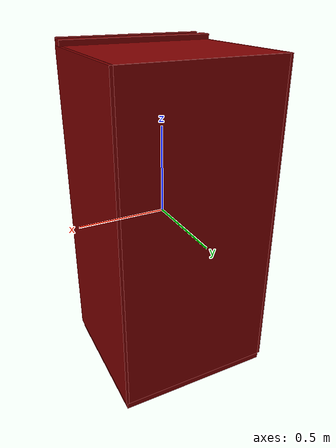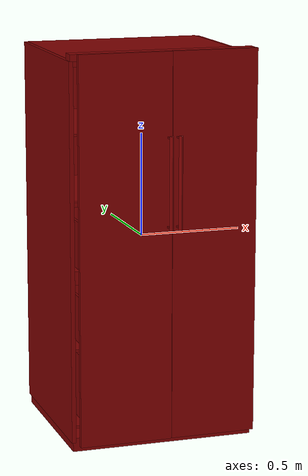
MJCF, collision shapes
<mujoco model="model">
  <compiler angle="radian"/>
  <asset>
    <mesh file="visuals/Body001.obj" name="Body001_vis"/>
    <mesh file="visuals/Body002.obj" name="Body002_vis"/>
    <mesh file="visuals/Door001.obj" name="Door001_vis"/>
    <mesh file="visuals/Door002.obj" name="Door002_vis"/>
    <mesh file="visuals/Drawer001_Clear.obj" name="Drawer001_Clear_vis"/>
    <mesh file="visuals/Drawer002_Clear.obj" name="Drawer002_Clear_vis"/>
    <mesh file="visuals/Drawer003_Clear.obj" name="Drawer003_Clear_vis"/>
    <mesh file="visuals/Drawer004.obj" name="Drawer004_vis"/>
    <mesh file="visuals/Drawer005.obj" name="Drawer005_vis"/>
    <texture file="visuals/T_BC001.png" name="Body001_material" type="2d"/>
    <material name="Body001_material" rgba="1 1 1 1.0" texture="Body001_material" shininess="0.2711968421936035" specular="0.0"/>
    <texture file="visuals/T_BC001.png" name="Body002_material" type="2d"/>
    <material name="Body002_material" rgba="1 1 1 1.0" texture="Body002_material" shininess="0.2711968421936035" specular="0.0"/>
    <texture file="visuals/T_BC001.png" name="Door001_material" type="2d"/>
    <material name="Door001_material" rgba="1 1 1 1.0" texture="Door001_material" shininess="0.2711968421936035" specular="0.0"/>
    <texture file="visuals/T_BC001.png" name="Door002_material" type="2d"/>
    <material name="Door002_material" rgba="1 1 1 1.0" texture="Door002_material" shininess="0.2711968421936035" specular="0.0"/>
    <texture file="visuals/T_BC001.png" name="Drawer001_Clear_material" type="2d"/>
    <material name="Drawer001_Clear_material" rgba="1 1 1 0.16049382090568542" texture="Drawer001_Clear_material" shininess="0.5" specular="0.3103448502657381"/>
    <texture file="visuals/T_BC001.png" name="Drawer002_Clear_material" type="2d"/>
    <material name="Drawer002_Clear_material" rgba="1 1 1 0.16049382090568542" texture="Drawer002_Clear_material" shininess="0.5" specular="0.3103448502657381"/>
    <texture file="visuals/T_BC001.png" name="Drawer003_Clear_material" type="2d"/>
    <material name="Drawer003_Clear_material" rgba="1 1 1 0.16049382090568542" texture="Drawer003_Clear_material" shininess="0.5" specular="0.3103448502657381"/>
    <texture file="visuals/T_BC001.png" name="Drawer004_material" type="2d"/>
    <material name="Drawer004_material" rgba="1 1 1 1.0" texture="Drawer004_material" shininess="0.2711968421936035" specular="0.0"/>
    <texture file="visuals/T_BC001.png" name="Drawer005_material" type="2d"/>
    <material name="Drawer005_material" rgba="1 1 1 1.0" texture="Drawer005_material" shininess="0.2711968421936035" specular="0.0"/>
  </asset>
  <default>
    <default class="visual">
      <geom conaffinity="0" contype="0" group="1" type="mesh"/>
    </default>
    <default class="collision">
      <geom group="0" rgba="0.5 0 0 0.5"/>
    </default>
    <default class="spawn">
      <geom group="0" rgba="1 1 1 0.5" contype="0" conaffinity="0"/>
      <site group="0" rgba="1 1 1 0.5"/>
    </default>
    <default class="region">
      <geom group="1" conaffinity="0" contype="0" rgba="0 1 0 0"/>
    </default>
  </default>
  <worldbody>
    <body>
      <body name="object">
        <geom mesh="Body001_vis" type="mesh" solimp="0.998 0.998 0.001" solref="0.001 1" density="100" friction="0.95 0.3 0.1" class="visual" material="Body001_material"/>
        <geom class="collision" type="box" pos="-0.443707 0.059211 0.000755" size="0.01028040237724781 0.4028489589691162 0.9031461477279663" quat="1.0 0.0 0.0 0.0"/>
        <geom class="collision" type="box" pos="0.444331 0.059501 0.000755" size="0.00862068496644497 0.4031399190425873 0.9031466841697693" quat="1.0 0.0 0.0 0.0"/>
        <geom class="collision" type="box" pos="0.000196 0.059501 0.891749" size="0.4350458085536957 0.4031401574611664 0.013431242667138577" quat="1.0 0.0 0.0 0.0"/>
        <geom class="collision" type="box" pos="-0.000761 0.433818 0.000755" size="0.436994343996048 0.028837796300649643 0.90314781665802" quat="1.0 0.0 0.0 0.0"/>
        <geom class="collision" type="box" pos="-0.000087 -0.313522 0.919216" size="0.4495415687561035 0.03391940891742706 0.01626831851899624" quat="1.0 0.0 0.0 0.0"/>
        <geom class="collision" type="box" pos="0.001016 0.039089 0.564477" size="0.4324672818183899 0.3680087625980377 0.00487640593200922" quat="1.0 0.0 0.0 0.0"/>
        <geom class="collision" type="box" pos="0.001016 0.067945 0.228748" size="0.4324675500392914 0.3391523063182831 0.006101853214204311" quat="1.0 0.0 0.0 0.0"/>
        <geom class="collision" type="box" pos="0.001016 0.057008 -0.115253" size="0.43246784806251526 0.3500896096229553 0.03215775638818741" quat="1.0 0.0 0.0 0.0"/>
        <geom class="collision" type="box" pos="0.017800 0.070008 -0.000826" size="0.007351219654083252 0.33708974719047546 0.8835601806640625" quat="1.0 0.0 0.0 0.0"/>
        <geom class="collision" type="box" pos="0.001016 0.040772 -0.455976" size="0.43246838450431824 0.3663260340690613 0.006101859733462334" quat="1.0 0.0 0.0 0.0"/>
        <geom class="collision" type="box" pos="0.001016 0.040772 -0.829457" size="0.4324686825275421 0.3663261830806732 0.0061018625274300575" quat="1.0 0.0 0.0 0.0"/>
        <geom class="collision" type="box" pos="-0.001049 0.058834 -0.913852" size="0.44485124945640564 0.39595454931259155 0.03323546051979065" quat="1.0 0.0 0.0 0.0"/>
        <geom class="collision" type="box" pos="0.001016 -0.279580 0.233832" size="0.43247273564338684 0.013893621042370796 0.011185887269675732" quat="1.0 0.0 0.0 0.0"/>
        <body name="Body002">
          <geom mesh="Body002_vis" type="mesh" solimp="0.998 0.998 0.001" solref="0.001 1" density="100" friction="0.95 0.3 0.1" class="visual" material="Body002_material"/>
        </body>
        <body name="Door001">
          <joint axis="0.0 0.0 -1.0" pos="-0.433391 -0.389803 0.021126" limited="true" name="Door001_joint" range="0.0 1.5707963267948966" type="hinge" damping="1" frictionloss="1" armature=".01" stiffness="0.05"/>
          <geom mesh="Door001_vis" type="mesh" solimp="0.998 0.998 0.001" solref="0.001 1" density="100" friction="0.95 0.3 0.1" class="visual" material="Door001_material"/>
          <geom class="collision" type="box" pos="-0.203820 -0.393908 0.016974" size="0.22312362492084503 0.012319707311689854 0.9237759709358215" quat="1.0 0.0 0.0 0.0"/>
          <geom class="collision" type="cylinder" pos="-0.001125 -0.454811 0.335364" size="0.00936603732407093 0.22198478877544403" quat="1.0 0.0 0.0 0.0"/>
          <geom class="collision" type="box" pos="-0.001276 -0.425946 0.125444" size="0.0038090930320322514 0.02161657065153122 0.0038090930320322514" quat="1.0 0.0 0.0 0.0"/>
          <geom class="collision" type="box" pos="-0.001276 -0.425946 0.545310" size="0.0038090930320322514 0.02161657065153122 0.0038090930320322514" quat="1.0 0.0 0.0 0.0"/>
        </body>
        <body name="Door002">
          <joint axis="0.0 0.0 1.0" pos="0.432698 -0.386713 0.020022" limited="true" name="Door002_joint" range="0.0 1.5707963267948966" type="hinge" damping="1" frictionloss="1" armature=".01" stiffness="0.05"/>
          <geom mesh="Door002_vis" type="mesh" solimp="0.998 0.998 0.001" solref="0.001 1" density="100" friction="0.95 0.3 0.1" class="visual" material="Door002_material"/>
          <geom class="collision" type="cylinder" pos="0.044292 -0.451853 0.335364" size="0.00936603732407093 0.22198478877544403" quat="1.0 0.0 0.0 0.0"/>
          <geom class="collision" type="box" pos="0.229521 -0.391759 0.017290" size="0.2071627527475357 0.010171300731599331 0.9234687685966492" quat="1.0 0.0 0.0 0.0"/>
          <geom class="collision" type="box" pos="0.044550 -0.422913 0.125444" size="0.0038090930320322514 0.02161657065153122 0.0038090930320322514" quat="1.0 0.0 0.0 0.0"/>
          <geom class="collision" type="box" pos="0.044550 -0.422913 0.545310" size="0.0038090930320322514 0.02161657065153122 0.0038090930320322514" quat="1.0 0.0 0.0 0.0"/>
        </body>
        <body name="Drawer001_Clear">
          <joint axis="0.0 -1.0 0.0" pos="-0.193679 0.050992 0.115075" limited="true" name="Drawer001_Clear_joint" range="0.0 0.45" type="slide" damping="1" frictionloss="1" armature=".01" stiffness="0.05"/>
          <geom mesh="Drawer001_Clear_vis" type="mesh" solimp="0.998 0.998 0.001" solref="0.001 1" density="100" friction="0.95 0.3 0.1" class="visual" material="Drawer001_Clear_material"/>
          <geom class="collision" type="box" pos="-0.391143 0.057788 0.034149" size="0.005660519935190678 0.3367117643356323 0.11344548314809799" quat="1.0 0.0 0.0 0.0"/>
          <geom class="collision" type="box" pos="0.003183 0.057788 0.034149" size="0.005660519003868103 0.3367117643356323 0.11344548314809799" quat="1.0 0.0 0.0 0.0"/>
          <geom class="collision" type="box" pos="-0.198029 0.057788 -0.075674" size="0.19594888389110565 0.3367117643356323 0.0036221479531377554" quat="1.0 0.0 0.0 0.0"/>
          <geom class="collision" type="box" pos="-0.193639 0.387477 0.029777" size="0.19356751441955566 0.007022251840680838 0.10907319188117981" quat="1.0 0.0 0.0 0.0"/>
          <geom class="collision" type="box" pos="-0.194494 -0.274672 0.034339" size="0.20183606445789337 0.007022251840680838 0.11363514512777328" quat="1.0 0.0 0.0 0.0"/>
        </body>
        <body name="Drawer002_Clear">
          <joint axis="0.0 -1.0 0.0" pos="-0.191361 0.035864 -0.272836" limited="true" name="Drawer002_Clear_joint" range="0.0 0.45" type="slide" damping="1" frictionloss="1" armature=".01" stiffness="0.05"/>
          <geom mesh="Drawer002_Clear_vis" type="mesh" solimp="0.998 0.998 0.001" solref="0.001 1" density="100" friction="0.95 0.3 0.1" class="visual" material="Drawer002_Clear_material"/>
          <geom class="collision" type="box" pos="-0.383597 0.043044 -0.329989" size="0.005660530179738998 0.3137841820716858 0.11189255863428116" quat="1.0 0.0 0.0 0.0"/>
          <geom class="collision" type="box" pos="0.000574 0.043044 -0.329989" size="0.005660519935190678 0.3137841820716858 0.11189255863428116" quat="1.0 0.0 0.0 0.0"/>
          <geom class="collision" type="box" pos="-0.197251 0.043044 -0.438259" size="0.1884203851222992 0.3137841820716858 0.0036221479531377554" quat="1.0 0.0 0.0 0.0"/>
          <geom class="collision" type="box" pos="-0.192861 0.349806 -0.332965" size="0.1860390305519104 0.007022251840680838 0.10891589522361755" quat="1.0 0.0 0.0 0.0"/>
          <geom class="collision" type="box" pos="-0.190865 -0.266488 -0.332680" size="0.19658853113651276 0.007022254168987274 0.11262248456478119" quat="1.0 0.0 0.0 0.0"/>
        </body>
        <body name="Drawer003_Clear">
          <joint axis="0.0 -1.0 0.0" pos="-0.189768 0.035864 -0.660714" limited="true" name="Drawer003_Clear_joint" range="0.0 0.45" type="slide" damping="1" frictionloss="1" armature=".01" stiffness="0.05"/>
          <geom mesh="Drawer003_Clear_vis" type="mesh" solimp="0.998 0.998 0.001" solref="0.001 1" density="100" friction="0.95 0.3 0.1" class="visual" material="Drawer003_Clear_material"/>
          <geom class="collision" type="box" pos="-0.189324 -0.284528 -0.660126" size="0.1955207884311676 0.007022251840680838 0.15626470744609833" quat="1.0 0.0 0.0 0.0"/>
          <geom class="collision" type="box" pos="-0.193031 0.351870 -0.663547" size="0.1883927434682846 0.007022251840680838 0.15284325182437897" quat="1.0 0.0 0.0 0.0"/>
          <geom class="collision" type="box" pos="-0.194381 0.044629 -0.812768" size="0.18773449957370758 0.31426379084587097 0.0036221479531377554" quat="1.0 0.0 0.0 0.0"/>
          <geom class="collision" type="box" pos="0.000475 0.044629 -0.659752" size="0.005660519935190678 0.31426379084587097 0.15663839876651764" quat="1.0 0.0 0.0 0.0"/>
          <geom class="collision" type="box" pos="-0.380756 0.044629 -0.659752" size="0.005660530179738998 0.31426379084587097 0.15663839876651764" quat="1.0 0.0 0.0 0.0"/>
        </body>
        <body name="Drawer004">
          <joint axis="0.0 -1.0 0.0" pos="0.208760 0.066835 -0.707487" limited="true" name="Drawer004_joint" range="0.0 0.45" type="slide" damping="1" frictionloss="1" armature=".01" stiffness="0.05"/>
          <geom mesh="Drawer004_vis" type="mesh" solimp="0.998 0.998 0.001" solref="0.001 1" density="100" friction="0.95 0.3 0.1" class="visual" material="Drawer004_material"/>
          <geom class="collision" type="box" pos="0.033766 0.070545 -0.706531" size="0.005660519003868103 0.2928333878517151 0.11333782225847244" quat="1.0 0.0 0.0 0.0"/>
          <geom class="collision" type="box" pos="0.384820 0.070545 -0.706531" size="0.0056605213321745396 0.2928333878517151 0.11333782225847244" quat="1.0 0.0 0.0 0.0"/>
          <geom class="collision" type="box" pos="0.211159 0.074116 -0.816247" size="0.16882160305976868 0.2892626225948334 0.003622137475758791" quat="1.0 0.0 0.0 0.0"/>
          <geom class="collision" type="box" pos="0.209362 0.356356 -0.706531" size="0.18097367882728577 0.007022251840680838 0.11333782225847244" quat="1.0 0.0 0.0 0.0"/>
          <geom class="collision" type="box" pos="0.209231 -0.229044 -0.707065" size="0.1798868030309677 0.007022251840680838 0.11280447244644165" quat="1.0 0.0 0.0 0.0"/>
        </body>
        <body name="Drawer005">
          <joint axis="0.0 -1.0 0.0" pos="0.208760 0.066835 -0.267055" limited="true" name="Drawer005_joint" range="0.0 0.45" type="slide" damping="1" frictionloss="1" armature=".01" stiffness="0.05"/>
          <geom mesh="Drawer005_vis" type="mesh" solimp="0.998 0.998 0.001" solref="0.001 1" density="100" friction="0.95 0.3 0.1" class="visual" material="Drawer005_material"/>
          <geom class="collision" type="box" pos="0.033957 0.067129 -0.331174" size="0.005660519003868103 0.2908722162246704 0.11219481378793716" quat="1.0 0.0 0.0 0.0"/>
          <geom class="collision" type="box" pos="0.384820 0.067129 -0.331174" size="0.0056605213321745396 0.2908722162246704 0.11219481378793716" quat="1.0 0.0 0.0 0.0"/>
          <geom class="collision" type="box" pos="0.211159 0.071428 -0.439747" size="0.16882160305976868 0.2865740954875946 0.0036221479531377554" quat="1.0 0.0 0.0 0.0"/>
          <geom class="collision" type="box" pos="0.209421 0.350979 -0.332152" size="0.1801718920469284 0.007022251840680838 0.11292802542448044" quat="1.0 0.0 0.0 0.0"/>
          <geom class="collision" type="box" pos="0.209421 -0.229358 -0.331059" size="0.1801718920469284 0.007022251840680838 0.1123102456331253" quat="1.0 0.0 0.0 0.0"/>
        </body>
        <geom class="region" name="reg_main" type="box" pos="0.0 0.028726 0.0" size="0.454973 0.43495300000000003 0.945924"/>
      </body>
    </body>
  </worldbody>
  <actuator>
    <motor name="Door001_joint_actuator" joint="Door001_joint" gear="50"/>
    <motor name="Door002_joint_actuator" joint="Door002_joint" gear="50"/>
    <motor name="Drawer001_Clear_joint_actuator" joint="Drawer001_Clear_joint" gear="50"/>
    <motor name="Drawer002_Clear_joint_actuator" joint="Drawer002_Clear_joint" gear="50"/>
    <motor name="Drawer003_Clear_joint_actuator" joint="Drawer003_Clear_joint" gear="50"/>
    <motor name="Drawer004_joint_actuator" joint="Drawer004_joint" gear="50"/>
    <motor name="Drawer005_joint_actuator" joint="Drawer005_joint" gear="50"/>
  </actuator>
</mujoco>
